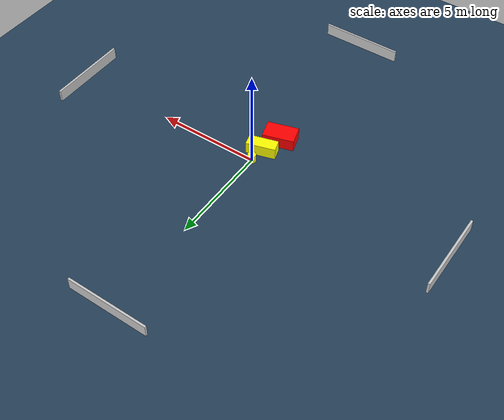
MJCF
<?xml version="1.0" ?>
<mujoco model="generated_environment">
  <option timestep="0.01" integrator="RK4" cone="elliptic"/>
  <default>
    <geom density="1"/>
  </default>
  <asset>
    <texture builtin="gradient" height="3072" name="skybox" rgb1="0.3 0.5 0.7" rgb2="0 0 0" type="skybox" width="512"/>
    <texture builtin="checker" height="300" name="groundplane" rgb1="0.2 0.3 0.4" rgb2="0.1 0.2 0.3" type="2d" width="300"/>
    <material name="groundplane" reflectance="0.2" texrepeat="5 5" texture="groundplane"/>
  </asset>
  <worldbody>
    <light dir="0 0 -1" directional="true" pos="0 0 1.5"/>
    <geom condim="3" friction="0.5 0.005 0.001" material="groundplane" name="floor" pos="0 0 0" size="0 0 0.05" type="plane"/>
    <body name="walls">
      <geom name="wall_1" condim="4" pos="-10.0 0.0 0.3" rgba="0.800000011920929 0.800000011920929 0.800000011920929 1.0" size="0.05 2.0 0.3" type="box"/>
      <geom name="wall_2" condim="4" pos="10.0 0.0 0.3" rgba="0.800000011920929 0.800000011920929 0.800000011920929 1.0" size="0.05 2.0 0.3" type="box"/>
      <geom name="wall_3" condim="4" pos="0.0 -10.0 0.3" rgba="0.800000011920929 0.800000011920929 0.800000011920929 1.0" size="2.0 0.05 0.3" type="box"/>
      <geom name="wall_4" condim="4" pos="0.0 10.0 0.3" rgba="0.800000011920929 0.800000011920929 0.800000011920929 1.0" size="2.0 0.05 0.3" type="box"/>
    </body>
    <body name="robot">
      <joint name="joint_x" type="slide" pos="0 0 0" axis="1 0 0"/>
      <joint name="joint_y" type="slide" pos="0 0 0" axis="0 1 0"/>
      <geom name="robot" type="cylinder" pos="0.0 0.0 0.2" size="0.2 0.2 0.0" mass="5.0" friction="1.0 0.005 0.0001" condim="4" rgba="1.0 1.0 0.0 1.0"/>
    </body>
    <body name="obstacle_1_movable">
      <geom name="obstacle_1_movable" condim="4" pos="-0.0628216955965505 -0.7567287923045822 0.3" euler="0 0 106.3154520267554" friction="0.0 0.005 0.001" rgba="1.0 1.0 0.0 1.0" size="0.2955508611969968 0.7059781710731505 0.3" type="box" mass="0.1"/>
      <joint type="free"/>
    </body>
    <body name="obstacle_2_static">
      <geom name="obstacle_2_static" condim="4" pos="-0.3670517433602705 -1.8238230425145427 0.3" euler="0 0 286.70131053103125" friction="0.0 0.005 0.001" rgba="1.0 0.0 0.0 1.0" size="0.4611419781005503 0.7604465178390343 0.3" type="box"/>
    </body>
  </worldbody>
  <actuator>
    <motor name="actuator_x" joint="joint_x" gear="1" ctrlrange="-1 1"/>
    <motor name="actuator_y" joint="joint_y" gear="1" ctrlrange="-1 1"/>
  </actuator>
</mujoco>
